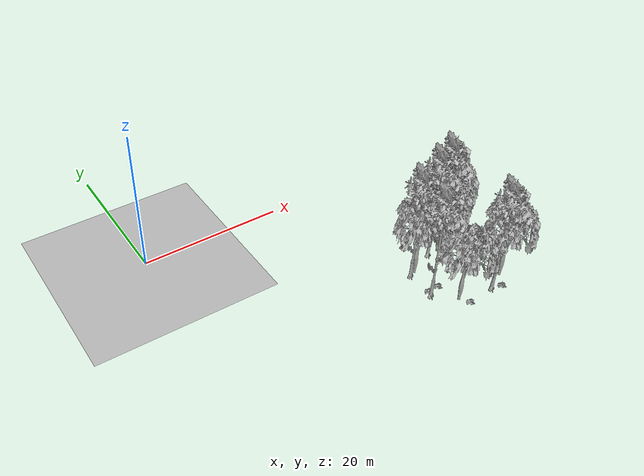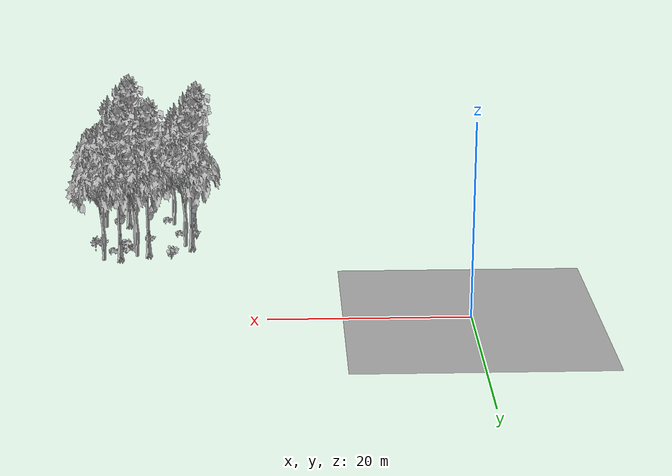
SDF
<sdf version="1.7">
 <world name="default">
  <model name="ground_plane">
   <static>1</static>
   <link name="link">
    <collision name="collision">
     <pose>-50 0 0 0 -0 0</pose>
     <geometry><plane><normal>0 0 1</normal><size>80 80</size></plane></geometry>
     <surface><contact><ode><min_depth>0.01</min_depth><max_vel>0</max_vel></ode></contact></surface>
    </collision>
    <visual name="grass">
     <cast_shadows>0</cast_shadows>
     <geometry>
      <mesh>
       <scale>0.46714285714285714 0.46714285714285714 0.1</scale>
       <uri>file://grass_plane/meshes/grass_plane.dae</uri>
      </mesh>
     </geometry>
    </visual>
   </link>
  </model>
  <model name="Tree 2">
   <static>1</static>
   <pose>28.143032347528802 -20.413554829449374 0 1.57079 -0 0</pose>
   <link name="link">
    <collision name="collision">
     <geometry><mesh><scale>3.5 5 3.5</scale><uri>model://tree_9/meshes/tree_9.obj</uri></mesh></geometry>
    </collision>
    <visual name="visual">
     <geometry><mesh><scale>3.5 5 3.5</scale><uri>model://tree_9/meshes/tree_9.obj</uri></mesh></geometry>
    </visual>
   </link>
  </model>
  <model name="Tree 74">
   <static>1</static>
   <pose>35.43737926566156 -27.758955438201145 0 1.57079 -0 0</pose>
   <link name="link">
    <collision name="collision">
     <geometry><mesh><scale>3.5 5 3.5</scale><uri>model://tree_9/meshes/tree_9.obj</uri></mesh></geometry>
    </collision>
    <visual name="visual">
     <geometry><mesh><scale>3.5 5 3.5</scale><uri>model://tree_9/meshes/tree_9.obj</uri></mesh></geometry>
    </visual>
   </link>
  </model>
  <model name="Tree 88">
   <static>1</static>
   <pose>37.78832146178503 -26.55930784614707 0 1.57079 -0 0</pose>
   <link name="link">
    <collision name="collision">
     <geometry><mesh><scale>3.5 5 3.5</scale><uri>model://tree_2/meshes/tree_2.obj</uri></mesh></geometry>
    </collision>
    <visual name="visual">
     <geometry><mesh><scale>3.5 5 3.5</scale><uri>model://tree_2/meshes/tree_2.obj</uri></mesh></geometry>
    </visual>
   </link>
  </model>
  <model name="Tree 110">
   <static>1</static>
   <pose>37.21781743671909 -16.477433729244577 0 1.57079 -0 0</pose>
   <link name="link">
    <collision name="collision">
     <geometry><mesh><scale>3.5 5 3.5</scale><uri>model://tree_2/meshes/tree_2.obj</uri></mesh></geometry>
    </collision>
    <visual name="visual">
     <geometry><mesh><scale>3.5 5 3.5</scale><uri>model://tree_2/meshes/tree_2.obj</uri></mesh></geometry>
    </visual>
   </link>
  </model>
  <model name="Tree 167">
   <static>1</static>
   <pose>28.727737569642372 -20.32253070403465 0 1.57079 -0 0</pose>
   <link name="link">
    <collision name="collision">
     <geometry><mesh><scale>3.5 5 3.5</scale><uri>model://tree_2/meshes/tree_2.obj</uri></mesh></geometry>
    </collision>
    <visual name="visual">
     <geometry><mesh><scale>3.5 5 3.5</scale><uri>model://tree_2/meshes/tree_2.obj</uri></mesh></geometry>
    </visual>
   </link>
  </model>
  <model name="Tree 289">
   <static>1</static>
   <pose>27.995045155290683 -24.599377445254156 0 1.57079 -0 0</pose>
   <link name="link">
    <collision name="collision">
     <geometry><mesh><scale>3.5 5 3.5</scale><uri>model://tree_9/meshes/tree_9.obj</uri></mesh></geometry>
    </collision>
    <visual name="visual">
     <geometry><mesh><scale>3.5 5 3.5</scale><uri>model://tree_9/meshes/tree_9.obj</uri></mesh></geometry>
    </visual>
   </link>
  </model>
  <model name="Tree 298">
   <static>1</static>
   <pose>35.65067655699626 -17.44498071221665 0 1.57079 -0 0</pose>
   <link name="link">
    <collision name="collision">
     <geometry><mesh><scale>3.5 5 3.5</scale><uri>model://tree_9/meshes/tree_9.obj</uri></mesh></geometry>
    </collision>
    <visual name="visual">
     <geometry><mesh><scale>3.5 5 3.5</scale><uri>model://tree_9/meshes/tree_9.obj</uri></mesh></geometry>
    </visual>
   </link>
  </model>
  <model name="Tree 445">
   <static>1</static>
   <pose>33.78004379977648 -17.59667488422504 0 1.57079 -0 0</pose>
   <link name="link">
    <collision name="collision">
     <geometry><mesh><scale>3.5 5 3.5</scale><uri>model://tree_2/meshes/tree_2.obj</uri></mesh></geometry>
    </collision>
    <visual name="visual">
     <geometry><mesh><scale>3.5 5 3.5</scale><uri>model://tree_2/meshes/tree_2.obj</uri></mesh></geometry>
    </visual>
   </link>
  </model>
  <model name="Tree 479">
   <static>1</static>
   <pose>30.276710338773043 -27.122408895213876 0 1.57079 -0 0</pose>
   <link name="link">
    <collision name="collision">
     <geometry><mesh><scale>3.5 5 3.5</scale><uri>model://tree_2/meshes/tree_2.obj</uri></mesh></geometry>
    </collision>
    <visual name="visual">
     <geometry><mesh><scale>3.5 5 3.5</scale><uri>model://tree_2/meshes/tree_2.obj</uri></mesh></geometry>
    </visual>
   </link>
  </model>
  <model name="Tree 577">
   <static>1</static>
   <pose>32.70318060301881 -18.53089811933841 0 1.57079 -0 0</pose>
   <link name="link">
    <collision name="collision">
     <geometry><mesh><scale>3.5 5 3.5</scale><uri>model://tree_9/meshes/tree_9.obj</uri></mesh></geometry>
    </collision>
    <visual name="visual">
     <geometry><mesh><scale>3.5 5 3.5</scale><uri>model://tree_9/meshes/tree_9.obj</uri></mesh></geometry>
    </visual>
   </link>
  </model>
  <model name="Tree 603">
   <static>1</static>
   <pose>34.015681245660545 -18.75748069211296 0 1.57079 -0 0</pose>
   <link name="link">
    <collision name="collision">
     <geometry><mesh><scale>3.5 5 3.5</scale><uri>model://tree_2/meshes/tree_2.obj</uri></mesh></geometry>
    </collision>
    <visual name="visual">
     <geometry><mesh><scale>3.5 5 3.5</scale><uri>model://tree_2/meshes/tree_2.obj</uri></mesh></geometry>
    </visual>
   </link>
  </model>
  <model name="Bush 11">
   <static>1</static>
   <pose>29.575483930972126 -24.090417519657016 0 1.57079 -0 0</pose>
   <link name="link">
    <collision name="collision">
     <geometry><mesh><scale>2 2 2</scale><uri>model://bush_2/meshes/bush_2.obj</uri></mesh></geometry>
     <surface><contact><collide_without_contact>false</collide_without_contact></contact></surface>
    </collision>
    <visual name="visual">
     <geometry><mesh><scale>2 2 2</scale><uri>model://bush_2/meshes/bush_2.obj</uri></mesh></geometry>
    </visual>
   </link>
  </model>
  <model name="Bush 47">
   <static>1</static>
   <pose>34.73681391771069 -19.748511163897593 0 1.57079 -0 0</pose>
   <link name="link">
    <collision name="collision">
     <geometry><mesh><scale>2 2 2</scale><uri>model://bush_2/meshes/bush_2.obj</uri></mesh></geometry>
     <surface><contact><collide_without_contact>false</collide_without_contact></contact></surface>
    </collision>
    <visual name="visual">
     <geometry><mesh><scale>2 2 2</scale><uri>model://bush_2/meshes/bush_2.obj</uri></mesh></geometry>
    </visual>
   </link>
  </model>
  <model name="Bush 158">
   <static>1</static>
   <pose>37.61820037799917 -19.004474970694993 0 1.57079 -0 0</pose>
   <link name="link">
    <collision name="collision">
     <geometry><mesh><scale>2 2 2</scale><uri>model://bush_5/meshes/bush_5.obj</uri></mesh></geometry>
     <surface><contact><collide_without_contact>false</collide_without_contact></contact></surface>
    </collision>
    <visual name="visual">
     <geometry><mesh><scale>2 2 2</scale><uri>model://bush_5/meshes/bush_5.obj</uri></mesh></geometry>
    </visual>
   </link>
  </model>
  <model name="Bush 182">
   <static>1</static>
   <pose>27.945160167115716 -24.162910489647878 0 1.57079 -0 0</pose>
   <link name="link">
    <collision name="collision">
     <geometry><mesh><scale>2 2 2</scale><uri>model://bush_2/meshes/bush_2.obj</uri></mesh></geometry>
     <surface><contact><collide_without_contact>false</collide_without_contact></contact></surface>
    </collision>
    <visual name="visual">
     <geometry><mesh><scale>2 2 2</scale><uri>model://bush_2/meshes/bush_2.obj</uri></mesh></geometry>
    </visual>
   </link>
  </model>
  <model name="Bush 191">
   <static>1</static>
   <pose>38.442453556696876 -19.032917309338913 0 1.57079 -0 0</pose>
   <link name="link">
    <collision name="collision">
     <geometry><mesh><scale>2 2 2</scale><uri>model://bush_5/meshes/bush_5.obj</uri></mesh></geometry>
     <surface><contact><collide_without_contact>false</collide_without_contact></contact></surface>
    </collision>
    <visual name="visual">
     <geometry><mesh><scale>2 2 2</scale><uri>model://bush_5/meshes/bush_5.obj</uri></mesh></geometry>
    </visual>
   </link>
  </model>
  <model name="Bush 282">
   <static>1</static>
   <pose>36.4923266827698 -18.99170596586 0 1.57079 -0 0</pose>
   <link name="link">
    <collision name="collision">
     <geometry><mesh><scale>2 2 2</scale><uri>model://bush_2/meshes/bush_2.obj</uri></mesh></geometry>
     <surface><contact><collide_without_contact>false</collide_without_contact></contact></surface>
    </collision>
    <visual name="visual">
     <geometry><mesh><scale>2 2 2</scale><uri>model://bush_2/meshes/bush_2.obj</uri></mesh></geometry>
    </visual>
   </link>
  </model>
  <model name="Bush 299">
   <static>1</static>
   <pose>35.07574482671272 -18.23290807701115 0 1.57079 -0 0</pose>
   <link name="link">
    <collision name="collision">
     <geometry><mesh><scale>2 2 2</scale><uri>model://bush_1/meshes/bush_1.obj</uri></mesh></geometry>
     <surface><contact><collide_without_contact>false</collide_without_contact></contact></surface>
    </collision>
    <visual name="visual">
     <geometry><mesh><scale>2 2 2</scale><uri>model://bush_1/meshes/bush_1.obj</uri></mesh></geometry>
    </visual>
   </link>
  </model>
  <model name="Bush 353">
   <static>1</static>
   <pose>38.5745845447687 -21.918920325621354 0 1.57079 -0 0</pose>
   <link name="link">
    <collision name="collision">
     <geometry><mesh><scale>2 2 2</scale><uri>model://bush_2/meshes/bush_2.obj</uri></mesh></geometry>
     <surface><contact><collide_without_contact>false</collide_without_contact></contact></surface>
    </collision>
    <visual name="visual">
     <geometry><mesh><scale>2 2 2</scale><uri>model://bush_2/meshes/bush_2.obj</uri></mesh></geometry>
    </visual>
   </link>
  </model>
  <model name="Bush 360">
   <static>1</static>
   <pose>36.61261942783577 -28.331453924781115 0 1.57079 -0 0</pose>
   <link name="link">
    <collision name="collision">
     <geometry><mesh><scale>2 2 2</scale><uri>model://bush_2/meshes/bush_2.obj</uri></mesh></geometry>
     <surface><contact><collide_without_contact>false</collide_without_contact></contact></surface>
    </collision>
    <visual name="visual">
     <geometry><mesh><scale>2 2 2</scale><uri>model://bush_2/meshes/bush_2.obj</uri></mesh></geometry>
    </visual>
   </link>
  </model>
  <model name="Bush 496">
   <static>1</static>
   <pose>30.170758967444357 -16.486602002914186 0 1.57079 -0 0</pose>
   <link name="link">
    <collision name="collision">
     <geometry><mesh><scale>2 2 2</scale><uri>model://bush_0/meshes/bush_0.obj</uri></mesh></geometry>
     <surface><contact><collide_without_contact>false</collide_without_contact></contact></surface>
    </collision>
    <visual name="visual">
     <geometry><mesh><scale>2 2 2</scale><uri>model://bush_0/meshes/bush_0.obj</uri></mesh></geometry>
    </visual>
   </link>
  </model>
  <model name="Bush 529">
   <static>1</static>
   <pose>32.814915561201644 -22.71933991494679 0 1.57079 -0 0</pose>
   <link name="link">
    <collision name="collision">
     <geometry><mesh><scale>2 2 2</scale><uri>model://bush_2/meshes/bush_2.obj</uri></mesh></geometry>
     <surface><contact><collide_without_contact>false</collide_without_contact></contact></surface>
    </collision>
    <visual name="visual">
     <geometry><mesh><scale>2 2 2</scale><uri>model://bush_2/meshes/bush_2.obj</uri></mesh></geometry>
    </visual>
   </link>
  </model>
  <model name="Bush 604">
   <static>1</static>
   <pose>31.14721273358245 -28.389902057746674 0 1.57079 -0 0</pose>
   <link name="link">
    <collision name="collision">
     <geometry><mesh><scale>2 2 2</scale><uri>model://bush_2/meshes/bush_2.obj</uri></mesh></geometry>
     <surface><contact><collide_without_contact>false</collide_without_contact></contact></surface>
    </collision>
    <visual name="visual">
     <geometry><mesh><scale>2 2 2</scale><uri>model://bush_2/meshes/bush_2.obj</uri></mesh></geometry>
    </visual>
   </link>
  </model>
 </world>
</sdf>
